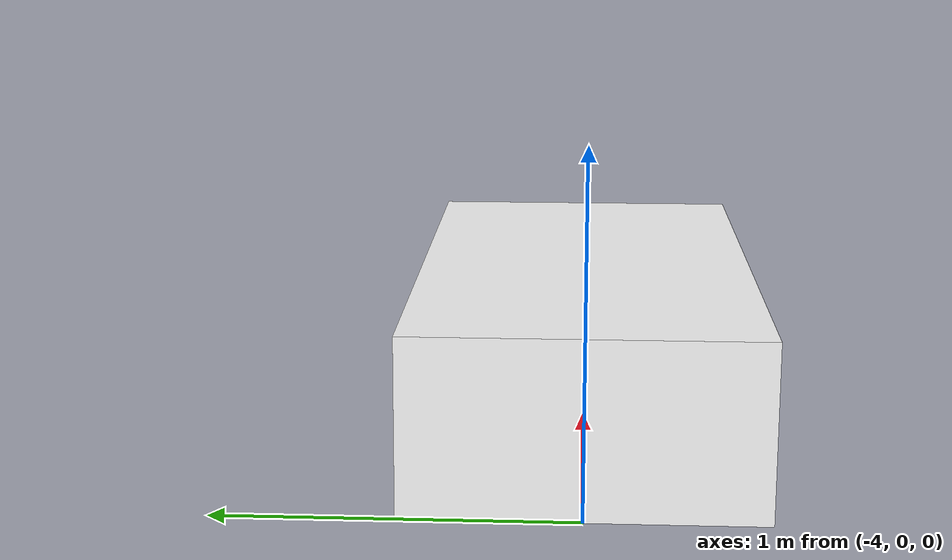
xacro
<?xml version="1.0"?>
<robot xmlns:xacro="http://www.ros.org/wiki/xacro"  name="robot">

    <material name="white">
        <color rgba = "1 1 1 1"/>
    </material>
    <material name="orange">
        <color rgba = "1 0.3 0.1 1"/>
    </material>
    <material name="blue">
        <color rgba = "0.2 0.2 1 1"/>
    </material>
    <material name="black">
        <color rgba = "0 0 0 1"/>
    </material>

    <!-- BASE  LINK -->
    <link name="base_link"></link>

    <!-- BASE_FOOTPRINT LINK -->
    <joint name="base_footprint_joint" type="fixed">
        <parent link="base_link"/>
        <child link="base_footprint"/>
        <origin xyz="0 0 0" rpy="0 0 0"/>
    </joint>

    <link name="base_footprint">
    </link>

    <!-- CHASSIS LINK-->
    <joint name="chassis_joint" type="fixed">
        <parent link="base_link"/>
        <child link="chassis"/>
        <origin xyz="-4 0 0"/>
    </joint>

    <link name="chassis">
        <visual>
            <origin xyz="1 0 0.25"/>
            <geometry>
                <box size="2 1 0.5"/>
            </geometry>
            <material name="white"/>
        </visual>

        <collision>
            <origin xyz="1 0 0.25"/>
            <geometry>
                <box size="2 1 0.5"/>
            </geometry>
        </collision>

        <xacro:inertial_box mass="0.5" x="2" y="1" z="0.5">
            <origin xyz="1 0 0.25" rpy="0 0 0"/>
        </xacro:inertial_box>
    </link>

    <gazebo reference="chassis">
        <material>Gazebo/White</material>
    </gazebo>

    <!--LEFT FRONT WHEEL LINK-->

    <!--RIGHT FRONT WHEEL LINK-->

    <!--LEFT REAR WHEEL LINK-->

    <!--RIGHT REAR WHEEL LINK-->

</robot>
